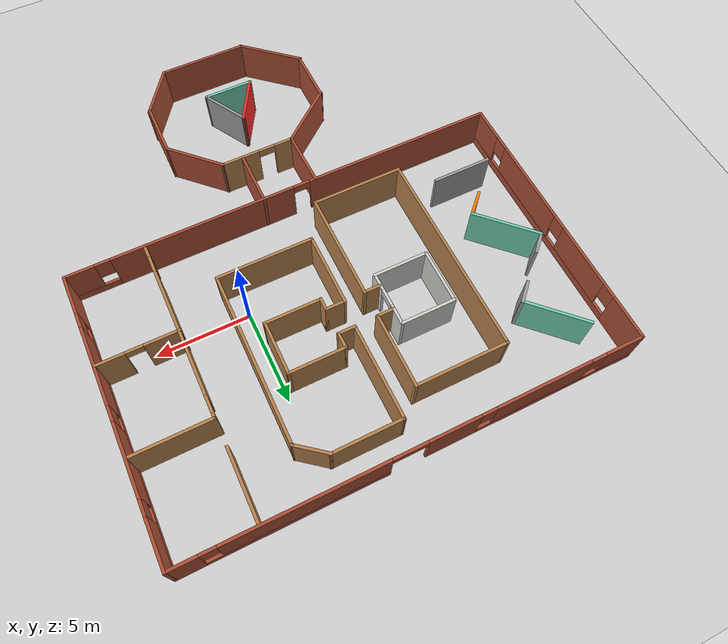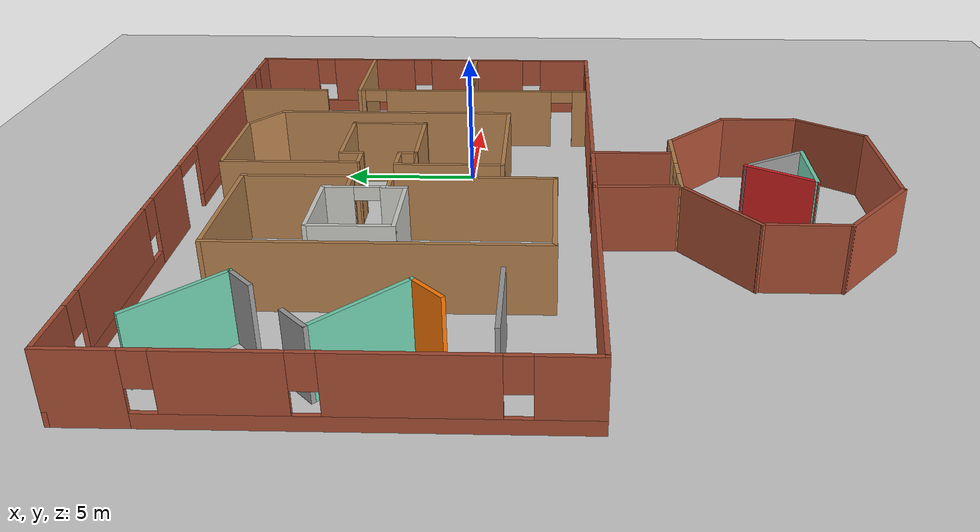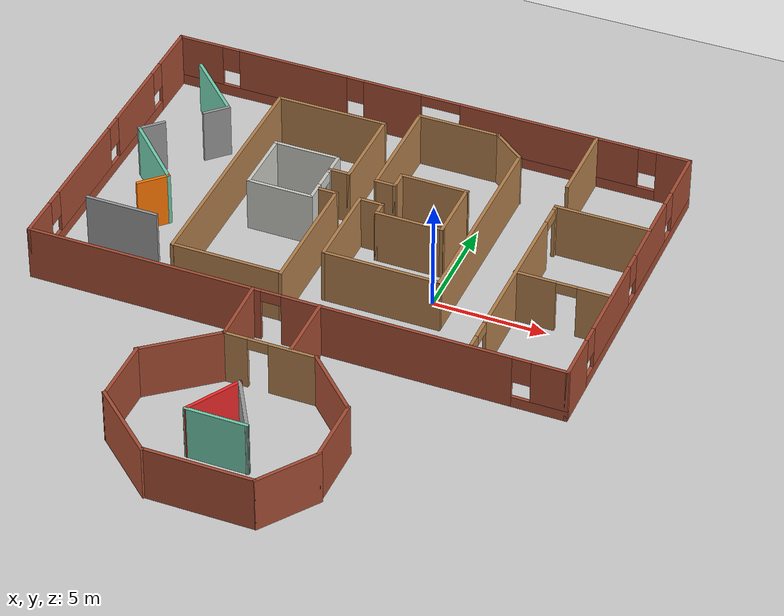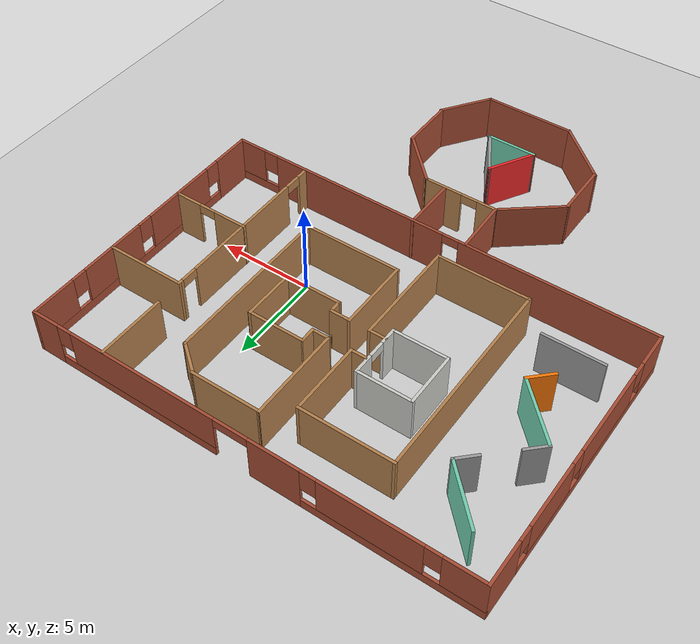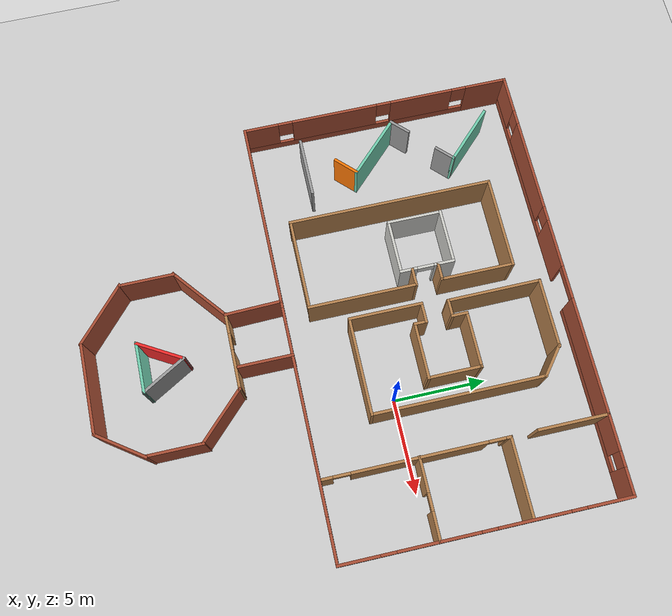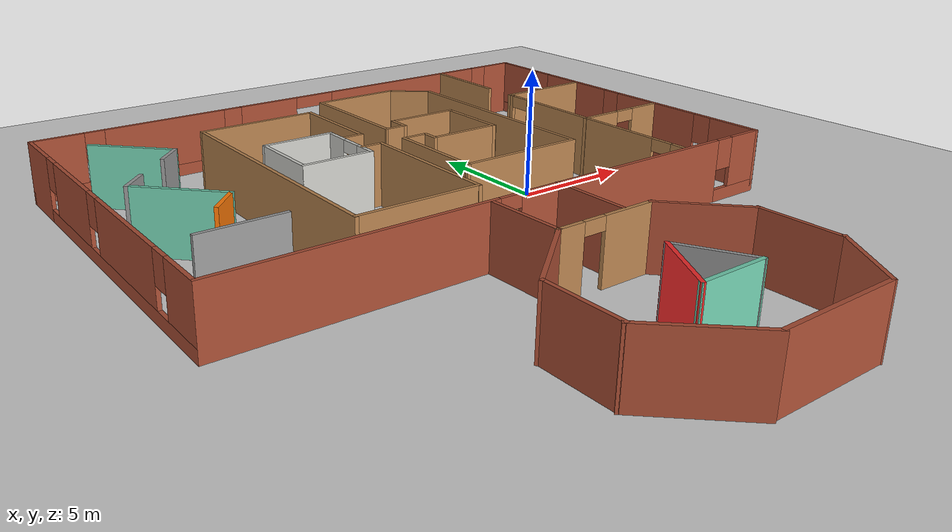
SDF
<sdf version="1.7">
 <world name="default">
  <model name="ground_plane">
   <static>1</static>
   <link name="linkgp">
    <collision name="collision">
     <geometry><plane><normal>0 0 1</normal><size>100 100</size></plane></geometry>
     <surface>
      <contact><collide_bitmask>65535</collide_bitmask></contact>
      <friction><ode><mu>100</mu><mu2>50</mu2></ode></friction>
     </surface>
    </collision>
    <visual name="visual">
     <cast_shadows>0</cast_shadows>
     <geometry><plane><normal>0 0 1</normal><size>100 100</size></plane></geometry>
     <material>
      <script><uri>file://media/materials/scripts/gazebo.material</uri><name>Gazebo/Grey</name></script>
     </material>
    </visual>
   </link>
  </model>
  <model name="RoboHab">
   <pose>-4.21544 -2.56056 0 0 -0 0</pose>
   <link name="Wall_19">
    <collision name="Wall_19_Collision">
     <geometry><box><size>3 0.15 2.5</size></box></geometry>
     <pose>0 0 1.25 0 -0 0</pose>
    </collision>
    <visual name="Wall_19_Visual">
     <pose>0 0 1.25 0 -0 0</pose>
     <geometry><box><size>3 0.15 2.5</size></box></geometry>
     <material>
      <script><uri>file://media/materials/scripts/gazebo.material</uri><name>Gazebo/CeilingTiled</name></script>
      <ambient>1 1 1 1</ambient>
     </material>
     <meta><layer>0</layer></meta>
    </visual>
    <pose>-4.80994 5.75548 0 0 -0 -1.5708</pose>
   </link>
   <link name="Wall_20">
    <collision name="Wall_20_Collision">
     <geometry><box><size>3 0.15 2.5</size></box></geometry>
     <pose>0 0 1.25 0 -0 0</pose>
    </collision>
    <visual name="Wall_20_Visual">
     <pose>0 0 1.25 0 -0 0</pose>
     <geometry><box><size>3 0.15 2.5</size></box></geometry>
     <material>
      <script><uri>file://media/materials/scripts/gazebo.material</uri><name>Gazebo/CeilingTiled</name></script>
      <ambient>1 1 1 1</ambient>
     </material>
     <meta><layer>0</layer></meta>
    </visual>
    <pose>-3.38494 4.33048 0 0 -0 0</pose>
   </link>
   <link name="Wall_21">
    <pose>-1.95993 5.75548 0 0 -0 1.5708</pose>
    <visual name="Wall_21_Visual_0">
     <pose>-1.02117 0 1.25 0 -0 0</pose>
     <geometry><box><size>0.957653 0.15 2.5</size></box></geometry>
     <material>
      <script><uri>file://media/materials/scripts/gazebo.material</uri><name>Gazebo/CeilingTiled</name></script>
      <ambient>1 1 1 1</ambient>
     </material>
     <meta><layer>0</layer></meta>
    </visual>
    <collision name="Wall_21_Collision_0">
     <geometry><box><size>0.957653 0.15 2.5</size></box></geometry>
     <pose>-1.02117 0 1.25 0 -0 0</pose>
    </collision>
    <visual name="Wall_21_Visual_1">
     <pose>0.928826 0 1.25 0 -0 0</pose>
     <geometry><box><size>1.14235 0.15 2.5</size></box></geometry>
     <material>
      <script><uri>file://media/materials/scripts/gazebo.material</uri><name>Gazebo/CeilingTiled</name></script>
      <ambient>1 1 1 1</ambient>
     </material>
     <meta><layer>0</layer></meta>
    </visual>
    <collision name="Wall_21_Collision_1">
     <geometry><box><size>1.14235 0.15 2.5</size></box></geometry>
     <pose>0.928826 0 1.25 0 -0 0</pose>
    </collision>
    <visual name="Wall_21_Visual_2">
     <pose>-0.092347 0 2.25 0 -0 0</pose>
     <geometry><box><size>0.9 0.15 0.5</size></box></geometry>
     <material>
      <script><uri>file://media/materials/scripts/gazebo.material</uri><name>Gazebo/CeilingTiled</name></script>
      <ambient>1 1 1 1</ambient>
     </material>
     <meta><layer>0</layer></meta>
    </visual>
    <collision name="Wall_21_Collision_2">
     <geometry><box><size>0.9 0.15 0.5</size></box></geometry>
     <pose>-0.092347 0 2.25 0 -0 0</pose>
    </collision>
   </link>
   <link name="Wall_22">
    <collision name="Wall_22_Collision">
     <geometry><box><size>3 0.15 2.5</size></box></geometry>
     <pose>0 0 1.25 0 -0 0</pose>
    </collision>
    <visual name="Wall_22_Visual">
     <pose>0 0 1.25 0 -0 0</pose>
     <geometry><box><size>3 0.15 2.5</size></box></geometry>
     <material>
      <script><uri>file://media/materials/scripts/gazebo.material</uri><name>Gazebo/CeilingTiled</name></script>
      <ambient>1 1 1 1</ambient>
     </material>
     <meta><layer>0</layer></meta>
    </visual>
    <pose>-3.38494 7.18048 0 0 -0 3.14159</pose>
   </link>
   <link name="Wall_24">
    <collision name="Wall_24_Collision">
     <geometry><box><size>1 0.15 2.5</size></box></geometry>
     <pose>0 0 1.25 0 -0 0</pose>
    </collision>
    <visual name="Wall_24_Visual">
     <pose>0 0 1.25 0 -0 0</pose>
     <geometry><box><size>1 0.15 2.5</size></box></geometry>
     <material>
      <script><uri>file://media/materials/scripts/gazebo.material</uri><name>Gazebo/Wood</name></script>
      <ambient>1 1 1 1</ambient>
     </material>
     <meta><layer>0</layer></meta>
    </visual>
    <pose>-1.52111 6.33992 0 0 -0 0</pose>
   </link>
   <link name="Wall_25">
    <collision name="Wall_25_Collision">
     <geometry><box><size>4 0.15 2.5</size></box></geometry>
     <pose>0 0 1.25 0 -0 0</pose>
    </collision>
    <visual name="Wall_25_Visual">
     <pose>0 0 1.25 0 -0 0</pose>
     <geometry><box><size>4 0.15 2.5</size></box></geometry>
     <material>
      <script><uri>file://media/materials/scripts/gazebo.material</uri><name>Gazebo/Wood</name></script>
      <ambient>1 1 1 1</ambient>
     </material>
     <meta><layer>0</layer></meta>
    </visual>
    <pose>-1.09611 8.26492 0 0 -0 1.5708</pose>
   </link>
   <link name="Wall_26">
    <collision name="Wall_26_Collision">
     <geometry><box><size>5 0.15 2.5</size></box></geometry>
     <pose>0 0 1.25 0 -0 0</pose>
    </collision>
    <visual name="Wall_26_Visual">
     <pose>0 0 1.25 0 -0 0</pose>
     <geometry><box><size>5 0.15 2.5</size></box></geometry>
     <material>
      <script><uri>file://media/materials/scripts/gazebo.material</uri><name>Gazebo/Wood</name></script>
      <ambient>1 1 1 1</ambient>
     </material>
     <meta><layer>0</layer></meta>
    </visual>
    <pose>-3.52111 10.1899 0 0 -0 3.14159</pose>
   </link>
   <link name="Wall_27">
    <collision name="Wall_27_Collision">
     <geometry><box><size>11.1467 0.15 2.5</size></box></geometry>
     <pose>0 0 1.25 0 -0 0</pose>
    </collision>
    <visual name="Wall_27_Visual">
     <pose>0 0 1.25 0 -0 0</pose>
     <geometry><box><size>11.1467 0.15 2.5</size></box></geometry>
     <material>
      <script><uri>file://media/materials/scripts/gazebo.material</uri><name>Gazebo/Wood</name></script>
      <ambient>1 1 1 1</ambient>
     </material>
     <meta><layer>0</layer></meta>
    </visual>
    <pose>-5.94611 4.69157 0 0 -0 -1.5708</pose>
   </link>
   <link name="Wall_28">
    <collision name="Wall_28_Collision">
     <geometry><box><size>5 0.15 2.5</size></box></geometry>
     <pose>0 0 1.25 0 -0 0</pose>
    </collision>
    <visual name="Wall_28_Visual">
     <pose>0 0 1.25 0 -0 0</pose>
     <geometry><box><size>5 0.15 2.5</size></box></geometry>
     <material>
      <script><uri>file://media/materials/scripts/gazebo.material</uri><name>Gazebo/Wood</name></script>
      <ambient>1 1 1 1</ambient>
     </material>
     <meta><layer>0</layer></meta>
    </visual>
    <pose>-3.52111 -0.783657 0 0 -0 0</pose>
   </link>
   <link name="Wall_29">
    <collision name="Wall_29_Collision">
     <geometry><box><size>5.89671 0.15 2.5</size></box></geometry>
     <pose>0 0 1.25 0 -0 0</pose>
    </collision>
    <visual name="Wall_29_Visual">
     <pose>0 0 1.25 0 -0 0</pose>
     <geometry><box><size>5.89671 0.15 2.5</size></box></geometry>
     <material>
      <script><uri>file://media/materials/scripts/gazebo.material</uri><name>Gazebo/Wood</name></script>
      <ambient>1 1 1 1</ambient>
     </material>
     <meta><layer>0</layer></meta>
    </visual>
    <pose>-1.09611 2.06657 0 0 -0 1.5708</pose>
   </link>
   <link name="Wall_30">
    <collision name="Wall_30_Collision">
     <geometry><box><size>1 0.15 2.5</size></box></geometry>
     <pose>0 0 1.25 0 -0 0</pose>
    </collision>
    <visual name="Wall_30_Visual">
     <pose>0 0 1.25 0 -0 0</pose>
     <geometry><box><size>1 0.15 2.5</size></box></geometry>
     <material>
      <script><uri>file://media/materials/scripts/gazebo.material</uri><name>Gazebo/Wood</name></script>
      <ambient>1 1 1 1</ambient>
     </material>
     <meta><layer>0</layer></meta>
    </visual>
    <pose>-1.52111 4.93992 0 0 -0 3.14159</pose>
   </link>
   <link name="Wall_32">
    <collision name="Wall_32_Collision">
     <geometry><box><size>1 0.15 2.5</size></box></geometry>
     <pose>0 0 1.25 0 -0 0</pose>
    </collision>
    <visual name="Wall_32_Visual">
     <pose>0 0 1.25 0 -0 0</pose>
     <geometry><box><size>1 0.15 2.5</size></box></geometry>
     <material>
      <script><uri>file://media/materials/scripts/gazebo.material</uri><name>Gazebo/Wood</name></script>
      <ambient>1 1 1 1</ambient>
     </material>
     <meta><layer>0</layer></meta>
    </visual>
    <pose>0.547275 4.95593 0 0 -0 0</pose>
   </link>
   <link name="Wall_33">
    <collision name="Wall_33_Collision">
     <geometry><box><size>0.75 0.15 2.5</size></box></geometry>
     <pose>0 0 1.25 0 -0 0</pose>
    </collision>
    <visual name="Wall_33_Visual">
     <pose>0 0 1.25 0 -0 0</pose>
     <geometry><box><size>0.75 0.15 2.5</size></box></geometry>
     <material>
      <script><uri>file://media/materials/scripts/gazebo.material</uri><name>Gazebo/Wood</name></script>
      <ambient>1 1 1 1</ambient>
     </material>
     <meta><layer>0</layer></meta>
    </visual>
    <pose>0.972275 4.65593 0 0 -0 -1.5708</pose>
   </link>
   <link name="Wall_34">
    <collision name="Wall_34_Collision">
     <geometry><box><size>3.08045 0.15 2.5</size></box></geometry>
     <pose>0 0 1.25 0 -0 0</pose>
    </collision>
    <visual name="Wall_34_Visual">
     <pose>0 0 1.25 0 -0 0</pose>
     <geometry><box><size>3.08045 0.15 2.5</size></box></geometry>
     <material>
      <script><uri>file://media/materials/scripts/gazebo.material</uri><name>Gazebo/Wood</name></script>
      <ambient>1 1 1 1</ambient>
     </material>
     <meta><layer>0</layer></meta>
    </visual>
    <pose>2.4375 4.35593 0 0 -0 0</pose>
   </link>
   <link name="Wall_35">
    <collision name="Wall_35_Collision">
     <geometry><box><size>2.91863 0.15 2.5</size></box></geometry>
     <pose>0 0 1.25 0 -0 0</pose>
    </collision>
    <visual name="Wall_35_Visual">
     <pose>0 0 1.25 0 -0 0</pose>
     <geometry><box><size>2.91863 0.15 2.5</size></box></geometry>
     <material>
      <script><uri>file://media/materials/scripts/gazebo.material</uri><name>Gazebo/Wood</name></script>
      <ambient>1 1 1 1</ambient>
     </material>
     <meta><layer>0</layer></meta>
    </visual>
    <pose>3.88262 5.74024 0 0 -0 1.5708</pose>
   </link>
   <link name="Wall_36">
    <collision name="Wall_36_Collision">
     <geometry><box><size>2.99908 0.15 2.5</size></box></geometry>
     <pose>0 0 1.25 0 -0 0</pose>
    </collision>
    <visual name="Wall_36_Visual">
     <pose>0 0 1.25 0 -0 0</pose>
     <geometry><box><size>2.99908 0.15 2.5</size></box></geometry>
     <material>
      <script><uri>file://media/materials/scripts/gazebo.material</uri><name>Gazebo/Wood</name></script>
      <ambient>1 1 1 1</ambient>
     </material>
     <meta><layer>0</layer></meta>
    </visual>
    <pose>2.47819 7.12455 0 0 -0 3.14159</pose>
   </link>
   <link name="Wall_37">
    <collision name="Wall_37_Collision">
     <geometry><box><size>0.918629 0.15 2.5</size></box></geometry>
     <pose>0 0 1.25 0 -0 0</pose>
    </collision>
    <visual name="Wall_37_Visual">
     <pose>0 0 1.25 0 -0 0</pose>
     <geometry><box><size>0.918629 0.15 2.5</size></box></geometry>
     <material>
      <script><uri>file://media/materials/scripts/gazebo.material</uri><name>Gazebo/Wood</name></script>
      <ambient>1 1 1 1</ambient>
     </material>
     <meta><layer>0</layer></meta>
    </visual>
    <pose>0.972275 6.74024 0 0 -0 -1.5708</pose>
   </link>
   <link name="Wall_38">
    <collision name="Wall_38_Collision">
     <geometry><box><size>1 0.15 2.5</size></box></geometry>
     <pose>0 0 1.25 0 -0 0</pose>
    </collision>
    <visual name="Wall_38_Visual">
     <pose>0 0 1.25 0 -0 0</pose>
     <geometry><box><size>1 0.15 2.5</size></box></geometry>
     <material>
      <script><uri>file://media/materials/scripts/gazebo.material</uri><name>Gazebo/Wood</name></script>
      <ambient>1 1 1 1</ambient>
     </material>
     <meta><layer>0</layer></meta>
    </visual>
    <pose>0.547275 6.35593 0 0 -0 3.14159</pose>
   </link>
   <link name="Wall_39">
    <collision name="Wall_39_Collision">
     <geometry><box><size>5.09068 0.15 2.5</size></box></geometry>
     <pose>0 0 1.25 0 -0 0</pose>
    </collision>
    <visual name="Wall_39_Visual">
     <pose>0 0 1.25 0 -0 0</pose>
     <geometry><box><size>5.09068 0.15 2.5</size></box></geometry>
     <material>
      <script><uri>file://media/materials/scripts/gazebo.material</uri><name>Gazebo/Wood</name></script>
      <ambient>1 1 1 1</ambient>
     </material>
     <meta><layer>0</layer></meta>
    </visual>
    <pose>0.108975 8.82623 0 0 -0 1.57618</pose>
   </link>
   <link name="Wall_40">
    <collision name="Wall_40_Collision">
     <geometry><box><size>3.75 0.15 2.5</size></box></geometry>
     <pose>0 0 1.25 0 -0 0</pose>
    </collision>
    <visual name="Wall_40_Visual">
     <pose>0 0 1.25 0 -0 0</pose>
     <geometry><box><size>3.75 0.15 2.5</size></box></geometry>
     <material>
      <script><uri>file://media/materials/scripts/gazebo.material</uri><name>Gazebo/Wood</name></script>
      <ambient>1 1 1 1</ambient>
     </material>
     <meta><layer>0</layer></meta>
    </visual>
    <pose>1.92227 11.2965 0 0 -0 0</pose>
   </link>
   <link name="Wall_41">
    <collision name="Wall_41_Collision">
     <geometry><box><size>1.90626 0.15 2.5</size></box></geometry>
     <pose>0 0 1.25 0 -0 0</pose>
    </collision>
    <visual name="Wall_41_Visual">
     <pose>0 0 1.25 0 -0 0</pose>
     <geometry><box><size>1.90626 0.15 2.5</size></box></geometry>
     <material>
      <script><uri>file://media/materials/scripts/gazebo.material</uri><name>Gazebo/Wood</name></script>
      <ambient>1 1 1 1</ambient>
     </material>
     <meta><layer>0</layer></meta>
    </visual>
    <pose>4.38398 10.7512 0 0 -0 -0.669996</pose>
   </link>
   <link name="Wall_42">
    <collision name="Wall_42_Collision">
     <geometry><box><size>9.25 0.15 2.5</size></box></geometry>
     <pose>0 0 1.25 0 -0 0</pose>
    </collision>
    <visual name="Wall_42_Visual">
     <pose>0 0 1.25 0 -0 0</pose>
     <geometry><box><size>9.25 0.15 2.5</size></box></geometry>
     <material>
      <script><uri>file://media/materials/scripts/gazebo.material</uri><name>Gazebo/Wood</name></script>
      <ambient>1 1 1 1</ambient>
     </material>
     <meta><layer>0</layer></meta>
    </visual>
    <pose>5.07228 5.65593 0 0 -0 -1.5708</pose>
   </link>
   <link name="Wall_43">
    <collision name="Wall_43_Collision">
     <geometry><box><size>5.25 0.15 2.5</size></box></geometry>
     <pose>0 0 1.25 0 -0 0</pose>
    </collision>
    <visual name="Wall_43_Visual">
     <pose>0 0 1.25 0 -0 0</pose>
     <geometry><box><size>5.25 0.15 2.5</size></box></geometry>
     <material>
      <script><uri>file://media/materials/scripts/gazebo.material</uri><name>Gazebo/Wood</name></script>
      <ambient>1 1 1 1</ambient>
     </material>
     <meta><layer>0</layer></meta>
    </visual>
    <pose>2.52228 1.10593 0 0 -0 3.14159</pose>
   </link>
   <link name="Wall_44">
    <collision name="Wall_44_Collision">
     <geometry><box><size>4 0.15 2.5</size></box></geometry>
     <pose>0 0 1.25 0 -0 0</pose>
    </collision>
    <visual name="Wall_44_Visual">
     <pose>0 0 1.25 0 -0 0</pose>
     <geometry><box><size>4 0.15 2.5</size></box></geometry>
     <material>
      <script><uri>file://media/materials/scripts/gazebo.material</uri><name>Gazebo/Wood</name></script>
      <ambient>1 1 1 1</ambient>
     </material>
     <meta><layer>0</layer></meta>
    </visual>
    <pose>-0.027725 3.03093 0 0 -0 1.5708</pose>
   </link>
   <link name="Wall_46">
    <pose>-11.8 5.2719 0 0 -0 -1.5708</pose>
    <visual name="Wall_46_Visual_0">
     <pose>-6.33247 0 1.25 0 -0 0</pose>
     <geometry><box><size>2.33506 0.15 2.5</size></box></geometry>
     <material>
      <script><uri>file://media/materials/scripts/gazebo.material</uri><name>Gazebo/Bricks</name></script>
      <ambient>1 1 1 1</ambient>
     </material>
     <meta><layer>0</layer></meta>
    </visual>
    <collision name="Wall_46_Collision_0">
     <geometry><box><size>2.33506 0.15 2.5</size></box></geometry>
     <pose>-6.33247 0 1.25 0 -0 0</pose>
    </collision>
    <visual name="Wall_46_Visual_1">
     <pose>1.16753 0 0.25 0 -0 0</pose>
     <geometry><box><size>12.6649 0.15 0.5</size></box></geometry>
     <material>
      <script><uri>file://media/materials/scripts/gazebo.material</uri><name>Gazebo/Bricks</name></script>
      <ambient>1 1 1 1</ambient>
     </material>
     <meta><layer>0</layer></meta>
    </visual>
    <collision name="Wall_46_Collision_1">
     <geometry><box><size>12.6649 0.15 0.5</size></box></geometry>
     <pose>1.16753 0 0.25 0 -0 0</pose>
    </collision>
    <visual name="Wall_46_Visual_2">
     <pose>-2.60145 0 1.5 0 -0 0</pose>
     <geometry><box><size>3.52699 0.15 2</size></box></geometry>
     <material>
      <script><uri>file://media/materials/scripts/gazebo.material</uri><name>Gazebo/Bricks</name></script>
      <ambient>1 1 1 1</ambient>
     </material>
     <meta><layer>0</layer></meta>
    </visual>
    <collision name="Wall_46_Collision_2">
     <geometry><box><size>3.52699 0.15 2</size></box></geometry>
     <pose>-2.60145 0 1.5 0 -0 0</pose>
    </collision>
    <visual name="Wall_46_Visual_3">
     <pose>2.35876 0 1.5 0 -0 0</pose>
     <geometry><box><size>4.79342 0.15 2</size></box></geometry>
     <material>
      <script><uri>file://media/materials/scripts/gazebo.material</uri><name>Gazebo/Bricks</name></script>
      <ambient>1 1 1 1</ambient>
     </material>
     <meta><layer>0</layer></meta>
    </visual>
    <collision name="Wall_46_Collision_3">
     <geometry><box><size>4.79342 0.15 2</size></box></geometry>
     <pose>2.35876 0 1.5 0 -0 0</pose>
    </collision>
    <visual name="Wall_46_Visual_4">
     <pose>6.52773 0 1.5 0 -0 0</pose>
     <geometry><box><size>1.94453 0.15 2</size></box></geometry>
     <material>
      <script><uri>file://media/materials/scripts/gazebo.material</uri><name>Gazebo/Bricks</name></script>
      <ambient>1 1 1 1</ambient>
     </material>
     <meta><layer>0</layer></meta>
    </visual>
    <collision name="Wall_46_Collision_4">
     <geometry><box><size>1.94453 0.15 2</size></box></geometry>
     <pose>6.52773 0 1.5 0 -0 0</pose>
    </collision>
    <visual name="Wall_46_Visual_5">
     <pose>-4.76494 0 1.9 0 -0 0</pose>
     <geometry><box><size>0.8 0.15 1.2</size></box></geometry>
     <material>
      <script><uri>file://media/materials/scripts/gazebo.material</uri><name>Gazebo/Bricks</name></script>
      <ambient>1 1 1 1</ambient>
     </material>
     <meta><layer>0</layer></meta>
    </visual>
    <collision name="Wall_46_Collision_5">
     <geometry><box><size>0.8 0.15 1.2</size></box></geometry>
     <pose>-4.76494 0 1.9 0 -0 0</pose>
    </collision>
    <visual name="Wall_46_Visual_6">
     <pose>-0.437953 0 1.9 0 -0 0</pose>
     <geometry><box><size>0.8 0.15 1.2</size></box></geometry>
     <material>
      <script><uri>file://media/materials/scripts/gazebo.material</uri><name>Gazebo/Bricks</name></script>
      <ambient>1 1 1 1</ambient>
     </material>
     <meta><layer>0</layer></meta>
    </visual>
    <collision name="Wall_46_Collision_6">
     <geometry><box><size>0.8 0.15 1.2</size></box></geometry>
     <pose>-0.437953 0 1.9 0 -0 0</pose>
    </collision>
    <visual name="Wall_46_Visual_7">
     <pose>5.15547 0 1.9 0 -0 0</pose>
     <geometry><box><size>0.8 0.15 1.2</size></box></geometry>
     <material>
      <script><uri>file://media/materials/scripts/gazebo.material</uri><name>Gazebo/Bricks</name></script>
      <ambient>1 1 1 1</ambient>
     </material>
     <meta><layer>0</layer></meta>
    </visual>
    <collision name="Wall_46_Collision_7">
     <geometry><box><size>0.8 0.15 1.2</size></box></geometry>
     <pose>5.15547 0 1.9 0 -0 0</pose>
    </collision>
   </link>
   <link name="Wall_47">
    <pose>-0 -2.1531 0 0 -0 0</pose>
    <visual name="Wall_47_Visual_0">
     <pose>-6.62427 0 1.25 0 -0 0</pose>
     <geometry><box><size>10.5015 0.15 2.5</size></box></geometry>
     <material>
      <script><uri>file://media/materials/scripts/gazebo.material</uri><name>Gazebo/Bricks</name></script>
      <ambient>1 1 1 1</ambient>
     </material>
     <meta><layer>0</layer></meta>
    </visual>
    <collision name="Wall_47_Collision_0">
     <geometry><box><size>10.5015 0.15 2.5</size></box></geometry>
     <pose>-6.62427 0 1.25 0 -0 0</pose>
    </collision>
    <visual name="Wall_47_Visual_1">
     <pose>4.49789 0 1.25 0 -0 0</pose>
     <geometry><box><size>9.94287 0.15 2.5</size></box></geometry>
     <material>
      <script><uri>file://media/materials/scripts/gazebo.material</uri><name>Gazebo/Bricks</name></script>
      <ambient>1 1 1 1</ambient>
     </material>
     <meta><layer>0</layer></meta>
    </visual>
    <collision name="Wall_47_Collision_1">
     <geometry><box><size>9.94287 0.15 2.5</size></box></geometry>
     <pose>4.49789 0 1.25 0 -0 0</pose>
    </collision>
    <visual name="Wall_47_Visual_2">
     <pose>10.6722 0 0.25 0 -0 0</pose>
     <geometry><box><size>2.40568 0.15 0.5</size></box></geometry>
     <material>
      <script><uri>file://media/materials/scripts/gazebo.material</uri><name>Gazebo/Bricks</name></script>
      <ambient>1 1 1 1</ambient>
     </material>
     <meta><layer>0</layer></meta>
    </visual>
    <collision name="Wall_47_Collision_2">
     <geometry><box><size>2.40568 0.15 0.5</size></box></geometry>
     <pose>10.6722 0 0.25 0 -0 0</pose>
    </collision>
    <visual name="Wall_47_Visual_3">
     <pose>11.0722 0 1.5 0 -0 0</pose>
     <geometry><box><size>1.60568 0.15 2</size></box></geometry>
     <material>
      <script><uri>file://media/materials/scripts/gazebo.material</uri><name>Gazebo/Bricks</name></script>
      <ambient>1 1 1 1</ambient>
     </material>
     <meta><layer>0</layer></meta>
    </visual>
    <collision name="Wall_47_Collision_3">
     <geometry><box><size>1.60568 0.15 2</size></box></geometry>
     <pose>11.0722 0 1.5 0 -0 0</pose>
    </collision>
    <visual name="Wall_47_Visual_4">
     <pose>9.86932 0 1.9 0 -0 0</pose>
     <geometry><box><size>0.8 0.15 1.2</size></box></geometry>
     <material>
      <script><uri>file://media/materials/scripts/gazebo.material</uri><name>Gazebo/Bricks</name></script>
      <ambient>1 1 1 1</ambient>
     </material>
     <meta><layer>0</layer></meta>
    </visual>
    <collision name="Wall_47_Collision_4">
     <geometry><box><size>0.8 0.15 1.2</size></box></geometry>
     <pose>9.86932 0 1.9 0 -0 0</pose>
    </collision>
    <visual name="Wall_47_Visual_5">
     <pose>-0.923549 0 2.25 0 -0 0</pose>
     <geometry><box><size>0.9 0.15 0.5</size></box></geometry>
     <material>
      <script><uri>file://media/materials/scripts/gazebo.material</uri><name>Gazebo/Bricks</name></script>
      <ambient>1 1 1 1</ambient>
     </material>
     <meta><layer>0</layer></meta>
    </visual>
    <collision name="Wall_47_Collision_5">
     <geometry><box><size>0.9 0.15 0.5</size></box></geometry>
     <pose>-0.923549 0 2.25 0 -0 0</pose>
    </collision>
   </link>
   <link name="Wall_48">
    <pose>11.8 5.2719 0 0 -0 1.5708</pose>
    <visual name="Wall_48_Visual_0">
     <pose>-6.40461 0 1.25 0 -0 0</pose>
     <geometry><box><size>2.19078 0.15 2.5</size></box></geometry>
     <material>
      <script><uri>file://media/materials/scripts/gazebo.material</uri><name>Gazebo/Bricks</name></script>
      <ambient>1 1 1 1</ambient>
     </material>
     <meta><layer>0</layer></meta>
    </visual>
    <collision name="Wall_48_Collision_0">
     <geometry><box><size>2.19078 0.15 2.5</size></box></geometry>
     <pose>-6.40461 0 1.25 0 -0 0</pose>
    </collision>
    <visual name="Wall_48_Visual_1">
     <pose>1.09539 0 0.25 0 -0 0</pose>
     <geometry><box><size>12.8092 0.15 0.5</size></box></geometry>
     <material>
      <script><uri>file://media/materials/scripts/gazebo.material</uri><name>Gazebo/Bricks</name></script>
      <ambient>1 1 1 1</ambient>
     </material>
     <meta><layer>0</layer></meta>
    </visual>
    <collision name="Wall_48_Collision_1">
     <geometry><box><size>12.8092 0.15 0.5</size></box></geometry>
     <pose>1.09539 0 0.25 0 -0 0</pose>
    </collision>
    <visual name="Wall_48_Visual_2">
     <pose>-2.39394 0 1.5 0 -0 0</pose>
     <geometry><box><size>4.23056 0.15 2</size></box></geometry>
     <material>
      <script><uri>file://media/materials/scripts/gazebo.material</uri><name>Gazebo/Bricks</name></script>
      <ambient>1 1 1 1</ambient>
     </material>
     <meta><layer>0</layer></meta>
    </visual>
    <collision name="Wall_48_Collision_2">
     <geometry><box><size>4.23056 0.15 2</size></box></geometry>
     <pose>-2.39394 0 1.5 0 -0 0</pose>
    </collision>
    <visual name="Wall_48_Visual_3">
     <pose>2.37278 0 1.5 0 -0 0</pose>
     <geometry><box><size>3.70288 0.15 2</size></box></geometry>
     <material>
      <script><uri>file://media/materials/scripts/gazebo.material</uri><name>Gazebo/Bricks</name></script>
      <ambient>1 1 1 1</ambient>
     </material>
     <meta><layer>0</layer></meta>
    </visual>
    <collision name="Wall_48_Collision_3">
     <geometry><box><size>3.70288 0.15 2</size></box></geometry>
     <pose>2.37278 0 1.5 0 -0 0</pose>
    </collision>
    <visual name="Wall_48_Visual_4">
     <pose>6.26211 0 1.5 0 -0 0</pose>
     <geometry><box><size>2.47577 0.15 2</size></box></geometry>
     <material>
      <script><uri>file://media/materials/scripts/gazebo.material</uri><name>Gazebo/Bricks</name></script>
      <ambient>1 1 1 1</ambient>
     </material>
     <meta><layer>0</layer></meta>
    </visual>
    <collision name="Wall_48_Collision_4">
     <geometry><box><size>2.47577 0.15 2</size></box></geometry>
     <pose>6.26211 0 1.5 0 -0 0</pose>
    </collision>
    <visual name="Wall_48_Visual_5">
     <pose>-4.90922 0 1.9 0 -0 0</pose>
     <geometry><box><size>0.8 0.15 1.2</size></box></geometry>
     <material>
      <script><uri>file://media/materials/scripts/gazebo.material</uri><name>Gazebo/Bricks</name></script>
      <ambient>1 1 1 1</ambient>
     </material>
     <meta><layer>0</layer></meta>
    </visual>
    <collision name="Wall_48_Collision_5">
     <geometry><box><size>0.8 0.15 1.2</size></box></geometry>
     <pose>-4.90922 0 1.9 0 -0 0</pose>
    </collision>
    <visual name="Wall_48_Visual_6">
     <pose>0.121344 0 1.9 0 -0 0</pose>
     <geometry><box><size>0.8 0.15 1.2</size></box></geometry>
     <material>
      <script><uri>file://media/materials/scripts/gazebo.material</uri><name>Gazebo/Bricks</name></script>
      <ambient>1 1 1 1</ambient>
     </material>
     <meta><layer>0</layer></meta>
    </visual>
    <collision name="Wall_48_Collision_6">
     <geometry><box><size>0.8 0.15 1.2</size></box></geometry>
     <pose>0.121344 0 1.9 0 -0 0</pose>
    </collision>
    <visual name="Wall_48_Visual_7">
     <pose>4.62423 0 1.9 0 -0 0</pose>
     <geometry><box><size>0.8 0.15 1.2</size></box></geometry>
     <material>
      <script><uri>file://media/materials/scripts/gazebo.material</uri><name>Gazebo/Bricks</name></script>
      <ambient>1 1 1 1</ambient>
     </material>
     <meta><layer>0</layer></meta>
    </visual>
    <collision name="Wall_48_Collision_7">
     <geometry><box><size>0.8 0.15 1.2</size></box></geometry>
     <pose>4.62423 0 1.9 0 -0 0</pose>
    </collision>
   </link>
   <link name="Wall_49">
    <pose>-0 12.6969 0 0 -0 3.14159</pose>
    <visual name="Wall_49_Visual_0">
     <pose>-11.1073 0 1.25 0 -0 0</pose>
     <geometry><box><size>1.53532 0.15 2.5</size></box></geometry>
     <material>
      <script><uri>file://media/materials/scripts/gazebo.material</uri><name>Gazebo/Bricks</name></script>
      <ambient>1 1 1 1</ambient>
     </material>
     <meta><layer>0</layer></meta>
    </visual>
    <collision name="Wall_49_Collision_0">
     <geometry><box><size>1.53532 0.15 2.5</size></box></geometry>
     <pose>-11.1073 0 1.25 0 -0 0</pose>
    </collision>
    <visual name="Wall_49_Visual_1">
     <pose>1.72583 0 1.25 0 -0 0</pose>
     <geometry><box><size>2.6752 0.15 2.5</size></box></geometry>
     <material>
      <script><uri>file://media/materials/scripts/gazebo.material</uri><name>Gazebo/Bricks</name></script>
      <ambient>1 1 1 1</ambient>
     </material>
     <meta><layer>0</layer></meta>
    </visual>
    <collision name="Wall_49_Collision_1">
     <geometry><box><size>2.6752 0.15 2.5</size></box></geometry>
     <pose>1.72583 0 1.25 0 -0 0</pose>
    </collision>
    <visual name="Wall_49_Visual_2">
     <pose>-5.87573 0 0.25 0 -0 0</pose>
     <geometry><box><size>8.92791 0.15 0.5</size></box></geometry>
     <material>
      <script><uri>file://media/materials/scripts/gazebo.material</uri><name>Gazebo/Bricks</name></script>
      <ambient>1 1 1 1</ambient>
     </material>
     <meta><layer>0</layer></meta>
    </visual>
    <collision name="Wall_49_Collision_2">
     <geometry><box><size>8.92791 0.15 0.5</size></box></geometry>
     <pose>-5.87573 0 0.25 0 -0 0</pose>
    </collision>
    <visual name="Wall_49_Visual_3">
     <pose>7.46921 0 0.25 0 -0 0</pose>
     <geometry><box><size>8.81157 0.15 0.5</size></box></geometry>
     <material>
      <script><uri>file://media/materials/scripts/gazebo.material</uri><name>Gazebo/Bricks</name></script>
      <ambient>1 1 1 1</ambient>
     </material>
     <meta><layer>0</layer></meta>
    </visual>
    <collision name="Wall_49_Collision_3">
     <geometry><box><size>8.81157 0.15 0.5</size></box></geometry>
     <pose>7.46921 0 0.25 0 -0 0</pose>
    </collision>
    <visual name="Wall_49_Visual_4">
     <pose>-5.47573 0 1.5 0 -0 0</pose>
     <geometry><box><size>8.12791 0.15 2</size></box></geometry>
     <material>
      <script><uri>file://media/materials/scripts/gazebo.material</uri><name>Gazebo/Bricks</name></script>
      <ambient>1 1 1 1</ambient>
     </material>
     <meta><layer>0</layer></meta>
    </visual>
    <collision name="Wall_49_Collision_4">
     <geometry><box><size>8.12791 0.15 2</size></box></geometry>
     <pose>-5.47573 0 1.5 0 -0 0</pose>
    </collision>
    <visual name="Wall_49_Visual_5">
     <pose>-5.47573 0 1.5 0 -0 0</pose>
     <geometry><box><size>8.12791 0.15 2</size></box></geometry>
     <material>
      <script><uri>file://media/materials/scripts/gazebo.material</uri><name>Gazebo/Bricks</name></script>
      <ambient>1 1 1 1</ambient>
     </material>
     <meta><layer>0</layer></meta>
    </visual>
    <collision name="Wall_49_Collision_5">
     <geometry><box><size>8.12791 0.15 2</size></box></geometry>
     <pose>-5.47573 0 1.5 0 -0 0</pose>
    </collision>
    <visual name="Wall_49_Visual_6">
     <pose>6.41844 0 1.5 0 -0 0</pose>
     <geometry><box><size>5.11003 0.15 2</size></box></geometry>
     <material>
      <script><uri>file://media/materials/scripts/gazebo.material</uri><name>Gazebo/Bricks</name></script>
      <ambient>1 1 1 1</ambient>
     </material>
     <meta><layer>0</layer></meta>
    </visual>
    <collision name="Wall_49_Collision_6">
     <geometry><box><size>5.11003 0.15 2</size></box></geometry>
     <pose>6.41844 0 1.5 0 -0 0</pose>
    </collision>
    <visual name="Wall_49_Visual_7">
     <pose>10.8242 0 1.5 0 -0 0</pose>
     <geometry><box><size>2.10154 0.15 2</size></box></geometry>
     <material>
      <script><uri>file://media/materials/scripts/gazebo.material</uri><name>Gazebo/Bricks</name></script>
      <ambient>1 1 1 1</ambient>
     </material>
     <meta><layer>0</layer></meta>
    </visual>
    <collision name="Wall_49_Collision_7">
     <geometry><box><size>2.10154 0.15 2</size></box></geometry>
     <pose>10.8242 0 1.5 0 -0 0</pose>
    </collision>
    <visual name="Wall_49_Visual_8">
     <pose>-9.93968 0 1.9 0 -0 0</pose>
     <geometry><box><size>0.8 0.15 1.2</size></box></geometry>
     <material>
      <script><uri>file://media/materials/scripts/gazebo.material</uri><name>Gazebo/Bricks</name></script>
      <ambient>1 1 1 1</ambient>
     </material>
     <meta><layer>0</layer></meta>
    </visual>
    <collision name="Wall_49_Collision_8">
     <geometry><box><size>0.8 0.15 1.2</size></box></geometry>
     <pose>-9.93968 0 1.9 0 -0 0</pose>
    </collision>
    <visual name="Wall_49_Visual_9">
     <pose>3.46343 0 1.9 0 -0 0</pose>
     <geometry><box><size>0.8 0.15 1.2</size></box></geometry>
     <material>
      <script><uri>file://media/materials/scripts/gazebo.material</uri><name>Gazebo/Bricks</name></script>
      <ambient>1 1 1 1</ambient>
     </material>
     <meta><layer>0</layer></meta>
    </visual>
    <collision name="Wall_49_Collision_9">
     <geometry><box><size>0.8 0.15 1.2</size></box></geometry>
     <pose>3.46343 0 1.9 0 -0 0</pose>
    </collision>
    <visual name="Wall_49_Visual_10">
     <pose>9.37346 0 1.9 0 -0 0</pose>
     <geometry><box><size>0.8 0.15 1.2</size></box></geometry>
     <material>
      <script><uri>file://media/materials/scripts/gazebo.material</uri><name>Gazebo/Bricks</name></script>
      <ambient>1 1 1 1</ambient>
     </material>
     <meta><layer>0</layer></meta>
    </visual>
    <collision name="Wall_49_Collision_10">
     <geometry><box><size>0.8 0.15 1.2</size></box></geometry>
     <pose>9.37346 0 1.9 0 -0 0</pose>
    </collision>
    <visual name="Wall_49_Visual_11">
     <pose>-0.511773 0 2.25 0 -0 0</pose>
     <geometry><box><size>1.8 0.15 0.5</size></box></geometry>
     <material>
      <script><uri>file://media/materials/scripts/gazebo.material</uri><name>Gazebo/Bricks</name></script>
      <ambient>1 1 1 1</ambient>
     </material>
     <meta><layer>0</layer></meta>
    </visual>
    <collision name="Wall_49_Collision_11">
     <geometry><box><size>1.8 0.15 0.5</size></box></geometry>
     <pose>-0.511773 0 2.25 0 -0 0</pose>
    </collision>
    <visual name="Wall_49_Visual_12">
     <pose>-0.511773 0 2.25 0 -0 0</pose>
     <geometry><box><size>1.8 0.15 0.5</size></box></geometry>
     <material>
      <script><uri>file://media/materials/scripts/gazebo.material</uri><name>Gazebo/Bricks</name></script>
      <ambient>1 1 1 1</ambient>
     </material>
     <meta><layer>0</layer></meta>
    </visual>
    <collision name="Wall_49_Collision_12">
     <geometry><box><size>1.8 0.15 0.5</size></box></geometry>
     <pose>-0.511773 0 2.25 0 -0 0</pose>
    </collision>
   </link>
   <link name="Wall_51">
    <collision name="Wall_51_Collision">
     <geometry><box><size>3.5 0.15 2.5</size></box></geometry>
     <pose>0 0 1.25 0 -0 0</pose>
    </collision>
    <visual name="Wall_51_Visual">
     <pose>0 0 1.25 0 -0 0</pose>
     <geometry><box><size>3.5 0.15 2.5</size></box></geometry>
     <material>
      <script><uri>file://media/materials/scripts/gazebo.material</uri><name>Gazebo/Grey</name></script>
      <ambient>0.435294 0.796078 0.67451 1</ambient>
     </material>
     <meta><layer>0</layer></meta>
    </visual>
    <pose>-8.90916 9.88162 0 0 -0 -0.785398</pose>
   </link>
   <link name="Wall_52">
    <collision name="Wall_52_Collision">
     <geometry><box><size>1.25 0.15 2.5</size></box></geometry>
     <pose>0 0 1.25 0 -0 0</pose>
    </collision>
    <visual name="Wall_52_Visual">
     <pose>0 0 1.25 0 -0 0</pose>
     <geometry><box><size>1.25 0.15 2.5</size></box></geometry>
     <material>
      <script><uri>file://media/materials/scripts/gazebo.material</uri><name>Gazebo/Grey</name></script>
      <ambient>1 1 1 1</ambient>
     </material>
     <meta><layer>0</layer></meta>
    </visual>
    <pose>-8.11366 8.30831 0 0 -0 -2.35619</pose>
   </link>
   <link name="Wall_54">
    <collision name="Wall_54_Collision">
     <geometry><box><size>1.25 0.15 2.5</size></box></geometry>
     <pose>0 0 1.25 0 -0 0</pose>
    </collision>
    <visual name="Wall_54_Visual">
     <pose>0 0 1.25 0 -0 0</pose>
     <geometry><box><size>1.25 0.15 2.5</size></box></geometry>
     <material>
      <script><uri>file://media/materials/scripts/gazebo.material</uri><name>Gazebo/Grey</name></script>
      <ambient>1 1 1 1</ambient>
     </material>
     <meta><layer>0</layer></meta>
    </visual>
    <pose>-10.2165 6.26148 0 0 -0 -2.35619</pose>
   </link>
   <link name="Wall_55">
    <collision name="Wall_55_Collision">
     <geometry><box><size>3.75 0.15 2.5</size></box></geometry>
     <pose>0 0 1.25 0 -0 0</pose>
    </collision>
    <visual name="Wall_55_Visual">
     <pose>0 0 1.25 0 -0 0</pose>
     <geometry><box><size>3.75 0.15 2.5</size></box></geometry>
     <material>
      <script><uri>file://media/materials/scripts/gazebo.material</uri><name>Gazebo/Grey</name></script>
      <ambient>0.435294 0.796078 0.67451 1</ambient>
     </material>
     <meta><layer>0</layer></meta>
    </visual>
    <pose>-9.33258 4.59978 0 0 -0 -0.785398</pose>
   </link>
   <link name="Wall_56">
    <collision name="Wall_56_Collision">
     <geometry><box><size>1.5 0.15 2.5</size></box></geometry>
     <pose>0 0 1.25 0 -0 0</pose>
    </collision>
    <visual name="Wall_56_Visual">
     <pose>0 0 1.25 0 -0 0</pose>
     <geometry><box><size>1.5 0.15 2.5</size></box></geometry>
     <material>
      <script><uri>file://media/materials/scripts/gazebo.material</uri><name>Gazebo/Grey</name></script>
      <ambient>0.996078 0.47451 0.0196078 1</ambient>
     </material>
     <meta><layer>0</layer></meta>
    </visual>
    <pose>-8.53709 2.84969 0 0 -0 -2.35619</pose>
   </link>
   <link name="Wall_58">
    <collision name="Wall_58_Collision">
     <geometry><box><size>3.25 0.15 2.5</size></box></geometry>
     <pose>0 0 1.25 0 -0 0</pose>
    </collision>
    <visual name="Wall_58_Visual">
     <pose>0 0 1.25 0 -0 0</pose>
     <geometry><box><size>3.25 0.15 2.5</size></box></geometry>
     <material>
      <script><uri>file://media/materials/scripts/gazebo.material</uri><name>Gazebo/Grey</name></script>
      <ambient>1 1 1 1</ambient>
     </material>
     <meta><layer>0</layer></meta>
    </visual>
    <pose>-8.96916 0.718549 0 0 -0 0</pose>
   </link>
   <link name="Wall_60">
    <collision name="Wall_60_Collision">
     <geometry><box><size>3.75 0.15 2.5</size></box></geometry>
     <pose>0 0 1.25 0 -0 0</pose>
    </collision>
    <visual name="Wall_60_Visual">
     <pose>0 0 1.25 0 -0 0</pose>
     <geometry><box><size>3.75 0.15 2.5</size></box></geometry>
     <material>
      <script><uri>file://media/materials/scripts/gazebo.material</uri><name>Gazebo/Wood</name></script>
      <ambient>1 1 1 1</ambient>
     </material>
     <meta><layer>0</layer></meta>
    </visual>
    <pose>7.64877 10.862 0 0 -0 -1.5708</pose>
   </link>
   <link name="Wall_62">
    <pose>7.67537 2.808 0 0 -0 -1.5708</pose>
    <visual name="Wall_62_Visual_0">
     <pose>-4.71459 0 1.25 0 -0 0</pose>
     <geometry><box><size>0.320814 0.15 2.5</size></box></geometry>
     <material>
      <script><uri>file://media/materials/scripts/gazebo.material</uri><name>Gazebo/Wood</name></script>
      <ambient>1 1 1 1</ambient>
     </material>
     <meta><layer>0</layer></meta>
    </visual>
    <collision name="Wall_62_Collision_0">
     <geometry><box><size>0.320814 0.15 2.5</size></box></geometry>
     <pose>-4.71459 0 1.25 0 -0 0</pose>
    </collision>
    <visual name="Wall_62_Visual_1">
     <pose>-0.137287 0 1.25 0 -0 0</pose>
     <geometry><box><size>7.0338 0.15 2.5</size></box></geometry>
     <material>
      <script><uri>file://media/materials/scripts/gazebo.material</uri><name>Gazebo/Wood</name></script>
      <ambient>1 1 1 1</ambient>
     </material>
     <meta><layer>0</layer></meta>
    </visual>
    <collision name="Wall_62_Collision_1">
     <geometry><box><size>7.0338 0.15 2.5</size></box></geometry>
     <pose>-0.137287 0 1.25 0 -0 0</pose>
    </collision>
    <visual name="Wall_62_Visual_2">
     <pose>4.57731 0 1.25 0 -0 0</pose>
     <geometry><box><size>0.595387 0.15 2.5</size></box></geometry>
     <material>
      <script><uri>file://media/materials/scripts/gazebo.material</uri><name>Gazebo/Wood</name></script>
      <ambient>1 1 1 1</ambient>
     </material>
     <meta><layer>0</layer></meta>
    </visual>
    <collision name="Wall_62_Collision_2">
     <geometry><box><size>0.595387 0.15 2.5</size></box></geometry>
     <pose>4.57731 0 1.25 0 -0 0</pose>
    </collision>
    <visual name="Wall_62_Visual_3">
     <pose>-4.10419 0 2.25 0 -0 0</pose>
     <geometry><box><size>0.9 0.15 0.5</size></box></geometry>
     <material>
      <script><uri>file://media/materials/scripts/gazebo.material</uri><name>Gazebo/Wood</name></script>
      <ambient>1 1 1 1</ambient>
     </material>
     <meta><layer>0</layer></meta>
    </visual>
    <collision name="Wall_62_Collision_3">
     <geometry><box><size>0.9 0.15 0.5</size></box></geometry>
     <pose>-4.10419 0 2.25 0 -0 0</pose>
    </collision>
    <visual name="Wall_62_Visual_4">
     <pose>3.82961 0 2.25 0 -0 0</pose>
     <geometry><box><size>0.9 0.15 0.5</size></box></geometry>
     <material>
      <script><uri>file://media/materials/scripts/gazebo.material</uri><name>Gazebo/Wood</name></script>
      <ambient>1 1 1 1</ambient>
     </material>
     <meta><layer>0</layer></meta>
    </visual>
    <collision name="Wall_62_Collision_4">
     <geometry><box><size>0.9 0.15 0.5</size></box></geometry>
     <pose>3.82961 0 2.25 0 -0 0</pose>
    </collision>
   </link>
   <link name="Wall_64">
    <collision name="Wall_64_Collision">
     <geometry><box><size>4.25 0.15 2.5</size></box></geometry>
     <pose>0 0 1.25 0 -0 0</pose>
    </collision>
    <visual name="Wall_64_Visual">
     <pose>0 0 1.25 0 -0 0</pose>
     <geometry><box><size>4.25 0.15 2.5</size></box></geometry>
     <material>
      <script><uri>file://media/materials/scripts/gazebo.material</uri><name>Gazebo/Wood</name></script>
      <ambient>1 1 1 1</ambient>
     </material>
     <meta><layer>0</layer></meta>
    </visual>
    <pose>9.72537 7.608 0 0 -0 0</pose>
   </link>
   <link name="Wall_68">
    <pose>9.69877 2.92637 0 0 -0 0</pose>
    <visual name="Wall_68_Visual_0">
     <pose>-1.19766 0 1.25 0 -0 0</pose>
     <geometry><box><size>1.85467 0.15 2.5</size></box></geometry>
     <material>
      <script><uri>file://media/materials/scripts/gazebo.material</uri><name>Gazebo/Wood</name></script>
      <ambient>1 1 1 1</ambient>
     </material>
     <meta><layer>0</layer></meta>
    </visual>
    <collision name="Wall_68_Collision_0">
     <geometry><box><size>1.85467 0.15 2.5</size></box></geometry>
     <pose>-1.19766 0 1.25 0 -0 0</pose>
    </collision>
    <visual name="Wall_68_Visual_1">
     <pose>1.37734 0 1.25 0 -0 0</pose>
     <geometry><box><size>1.49533 0.15 2.5</size></box></geometry>
     <material>
      <script><uri>file://media/materials/scripts/gazebo.material</uri><name>Gazebo/Wood</name></script>
      <ambient>1 1 1 1</ambient>
     </material>
     <meta><layer>0</layer></meta>
    </visual>
    <collision name="Wall_68_Collision_1">
     <geometry><box><size>1.49533 0.15 2.5</size></box></geometry>
     <pose>1.37734 0 1.25 0 -0 0</pose>
    </collision>
    <visual name="Wall_68_Visual_2">
     <pose>0.179673 0 2.25 0 -0 0</pose>
     <geometry><box><size>0.9 0.15 0.5</size></box></geometry>
     <material>
      <script><uri>file://media/materials/scripts/gazebo.material</uri><name>Gazebo/Wood</name></script>
      <ambient>1 1 1 1</ambient>
     </material>
     <meta><layer>0</layer></meta>
    </visual>
    <collision name="Wall_68_Collision_2">
     <geometry><box><size>0.9 0.15 0.5</size></box></geometry>
     <pose>0.179673 0 2.25 0 -0 0</pose>
    </collision>
   </link>
   <link name="Wall_70">
    <pose>0.345898 -5.10885 0 0 -0 0.000218</pose>
    <visual name="Wall_70_Visual_0">
     <pose>-1.53746 0 1.25 0 -0 0</pose>
     <geometry><box><size>1.11645 0.15 2.5</size></box></geometry>
     <material>
      <script><uri>file://media/materials/scripts/gazebo.material</uri><name>Gazebo/Wood</name></script>
      <ambient>1 1 1 1</ambient>
     </material>
     <meta><layer>0</layer></meta>
    </visual>
    <collision name="Wall_70_Collision_0">
     <geometry><box><size>1.11645 0.15 2.5</size></box></geometry>
     <pose>-1.53746 0 1.25 0 -0 0</pose>
    </collision>
    <visual name="Wall_70_Visual_1">
     <pose>1.00822 0 1.25 0 -0 0</pose>
     <geometry><box><size>2.17493 0.15 2.5</size></box></geometry>
     <material>
      <script><uri>file://media/materials/scripts/gazebo.material</uri><name>Gazebo/Wood</name></script>
      <ambient>1 1 1 1</ambient>
     </material>
     <meta><layer>0</layer></meta>
    </visual>
    <collision name="Wall_70_Collision_1">
     <geometry><box><size>2.17493 0.15 2.5</size></box></geometry>
     <pose>1.00822 0 1.25 0 -0 0</pose>
    </collision>
    <visual name="Wall_70_Visual_2">
     <pose>-0.529239 0 2.25 0 -0 0</pose>
     <geometry><box><size>0.9 0.15 0.5</size></box></geometry>
     <material>
      <script><uri>file://media/materials/scripts/gazebo.material</uri><name>Gazebo/Wood</name></script>
      <ambient>1 1 1 1</ambient>
     </material>
     <meta><layer>0</layer></meta>
    </visual>
    <collision name="Wall_70_Collision_2">
     <geometry><box><size>0.9 0.15 0.5</size></box></geometry>
     <pose>-0.529239 0 2.25 0 -0 0</pose>
    </collision>
   </link>
   <link name="Wall_71">
    <collision name="Wall_71_Collision">
     <geometry><box><size>3.37203 0.15 2.5</size></box></geometry>
     <pose>0 0 1.25 0 -0 0</pose>
    </collision>
    <visual name="Wall_71_Visual">
     <pose>0 0 1.25 0 -0 0</pose>
     <geometry><box><size>3.37203 0.15 2.5</size></box></geometry>
     <material>
      <script><uri>file://media/materials/scripts/gazebo.material</uri><name>Gazebo/Bricks</name></script>
      <ambient>1 1 1 1</ambient>
     </material>
     <meta><layer>0</layer></meta>
    </visual>
    <pose>3.47558 -6.24253 0 0 -0 -0.780984</pose>
   </link>
   <link name="Wall_72">
    <collision name="Wall_72_Collision">
     <geometry><box><size>3.03914 0.15 2.5</size></box></geometry>
     <pose>0 0 1.25 0 -0 0</pose>
    </collision>
    <visual name="Wall_72_Visual">
     <pose>0 0 1.25 0 -0 0</pose>
     <geometry><box><size>3.03914 0.15 2.5</size></box></geometry>
     <material>
      <script><uri>file://media/materials/scripts/gazebo.material</uri><name>Gazebo/Bricks</name></script>
      <ambient>1 1 1 1</ambient>
     </material>
     <meta><layer>0</layer></meta>
    </visual>
    <pose>4.65494 -8.82112 0 0 -0 -1.5708</pose>
   </link>
   <link name="Wall_73">
    <collision name="Wall_73_Collision">
     <geometry><box><size>3.04064 0.15 2.5</size></box></geometry>
     <pose>0 0 1.25 0 -0 0</pose>
    </collision>
    <visual name="Wall_73_Visual">
     <pose>0 0 1.25 0 -0 0</pose>
     <geometry><box><size>3.04064 0.15 2.5</size></box></geometry>
     <material>
      <script><uri>file://media/materials/scripts/gazebo.material</uri><name>Gazebo/Bricks</name></script>
      <ambient>1 1 1 1</ambient>
     </material>
     <meta><layer>0</layer></meta>
    </visual>
    <pose>3.85927 -11.4482 0 0 -0 -2.18323</pose>
   </link>
   <link name="Wall_74">
    <collision name="Wall_74_Collision">
     <geometry><box><size>4.81286 0.15 2.5</size></box></geometry>
     <pose>0 0 1.25 0 -0 0</pose>
    </collision>
    <visual name="Wall_74_Visual">
     <pose>0 0 1.25 0 -0 0</pose>
     <geometry><box><size>4.81286 0.15 2.5</size></box></geometry>
     <material>
      <script><uri>file://media/materials/scripts/gazebo.material</uri><name>Gazebo/Bricks</name></script>
      <ambient>1 1 1 1</ambient>
     </material>
     <meta><layer>0</layer></meta>
    </visual>
    <pose>0.661808 -12.6309 0 0 -0 -3.14159</pose>
   </link>
   <link name="Wall_75">
    <collision name="Wall_75_Collision">
     <geometry><box><size>3.82521 0.15 2.5</size></box></geometry>
     <pose>0 0 1.25 0 -0 0</pose>
    </collision>
    <visual name="Wall_75_Visual">
     <pose>0 0 1.25 0 -0 0</pose>
     <geometry><box><size>3.82521 0.15 2.5</size></box></geometry>
     <material>
      <script><uri>file://media/materials/scripts/gazebo.material</uri><name>Gazebo/Bricks</name></script>
      <ambient>1 1 1 1</ambient>
     </material>
     <meta><layer>0</layer></meta>
    </visual>
    <pose>-3.08092 -11.4482 0 0 -0 2.41715</pose>
   </link>
   <link name="Wall_76">
    <collision name="Wall_76_Collision">
     <geometry><box><size>3 0.15 2.5</size></box></geometry>
     <pose>0 0 1.25 0 -0 0</pose>
    </collision>
    <visual name="Wall_76_Visual">
     <pose>0 0 1.25 0 -0 0</pose>
     <geometry><box><size>3 0.15 2.5</size></box></geometry>
     <material>
      <script><uri>file://media/materials/scripts/gazebo.material</uri><name>Gazebo/Bricks</name></script>
      <ambient>1 1 1 1</ambient>
     </material>
     <meta><layer>0</layer></meta>
    </visual>
    <pose>-4.42186 -8.8054 0 0 -0 1.5708</pose>
   </link>
   <link name="Wall_77">
    <collision name="Wall_77_Collision">
     <geometry><box><size>3.7571 0.15 2.5</size></box></geometry>
     <pose>0 0 1.25 0 -0 0</pose>
    </collision>
    <visual name="Wall_77_Visual">
     <pose>0 0 1.25 0 -0 0</pose>
     <geometry><box><size>3.7571 0.15 2.5</size></box></geometry>
     <material>
      <script><uri>file://media/materials/scripts/gazebo.material</uri><name>Gazebo/Bricks</name></script>
      <ambient>1 1 1 1</ambient>
     </material>
     <meta><layer>0</layer></meta>
    </visual>
    <pose>-3.05586 -6.24485 0 0 -0 0.681065</pose>
   </link>
   <link name="Wall_78">
    <collision name="Wall_78_Collision">
     <geometry><box><size>3.10167 0.15 2.5</size></box></geometry>
     <pose>0 0 1.25 0 -0 0</pose>
    </collision>
    <visual name="Wall_78_Visual">
     <pose>0 0 1.25 0 -0 0</pose>
     <geometry><box><size>3.10167 0.15 2.5</size></box></geometry>
     <material>
      <script><uri>file://media/materials/scripts/gazebo.material</uri><name>Gazebo/Bricks</name></script>
      <ambient>1 1 1 1</ambient>
     </material>
     <meta><layer>0</layer></meta>
    </visual>
    <pose>-1.6949 -3.63401 0 0 -0 1.59806</pose>
   </link>
   <link name="Wall_82">
    <collision name="Wall_82_Collision">
     <geometry><box><size>3 0.15 2.5</size></box></geometry>
     <pose>0 0 1.25 0 -0 0</pose>
    </collision>
    <visual name="Wall_82_Visual">
     <pose>0 0 1.25 0 -0 0</pose>
     <geometry><box><size>3 0.15 2.5</size></box></geometry>
     <material>
      <script><uri>file://media/materials/scripts/gazebo.material</uri><name>Gazebo/Bricks</name></script>
      <ambient>1 1 1 1</ambient>
     </material>
     <meta><layer>0</layer></meta>
    </visual>
    <pose>1.20552 -3.56323 0 0 -0 -1.5708</pose>
   </link>
   <link name="Wall_84">
    <collision name="Wall_84_Collision">
     <geometry><box><size>2.75 0.15 2.5</size></box></geometry>
     <pose>0 0 1.25 0 -0 0</pose>
    </collision>
    <visual name="Wall_84_Visual">
     <pose>0 0 1.25 0 -0 0</pose>
     <geometry><box><size>2.75 0.15 2.5</size></box></geometry>
     <material>
      <script><uri>file://media/materials/scripts/gazebo.material</uri><name>Gazebo/Grey</name></script>
      <ambient>0.937255 0.160784 0.160784 1</ambient>
     </material>
     <meta><layer>0</layer></meta>
    </visual>
    <pose>-0.501286 -8.73751 0 0 -0 -2.0944</pose>
   </link>
   <link name="Wall_85">
    <collision name="Wall_85_Collision">
     <geometry><box><size>2.75 0.15 2.5</size></box></geometry>
     <pose>0 0 1.25 0 -0 0</pose>
    </collision>
    <visual name="Wall_85_Visual">
     <pose>0 0 1.25 0 -0 0</pose>
     <geometry><box><size>2.75 0.15 2.5</size></box></geometry>
     <material>
      <script><uri>file://media/materials/scripts/gazebo.material</uri><name>Gazebo/Grey</name></script>
      <ambient>0.435294 0.796078 0.67451 1</ambient>
     </material>
     <meta><layer>0</layer></meta>
    </visual>
    <pose>0.148714 -9.86335 0 0 -0 0</pose>
   </link>
   <link name="Wall_86">
    <collision name="Wall_86_Collision">
     <geometry><box><size>2.75 0.15 2.5</size></box></geometry>
     <pose>0 0 1.25 0 -0 0</pose>
    </collision>
    <visual name="Wall_86_Visual">
     <pose>0 0 1.25 0 -0 0</pose>
     <geometry><box><size>2.75 0.15 2.5</size></box></geometry>
     <material>
      <script><uri>file://media/materials/scripts/gazebo.material</uri><name>Gazebo/Grey</name></script>
      <ambient>0 0 0 1</ambient>
     </material>
     <meta><layer>0</layer></meta>
    </visual>
    <pose>0.798714 -8.73751 0 0 -0 2.0944</pose>
   </link>
   <static>1</static>
  </model>
 </world>
</sdf>
